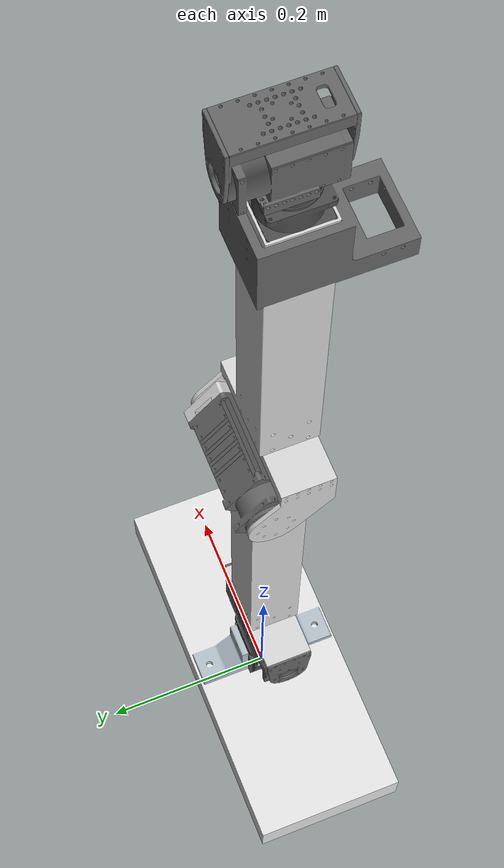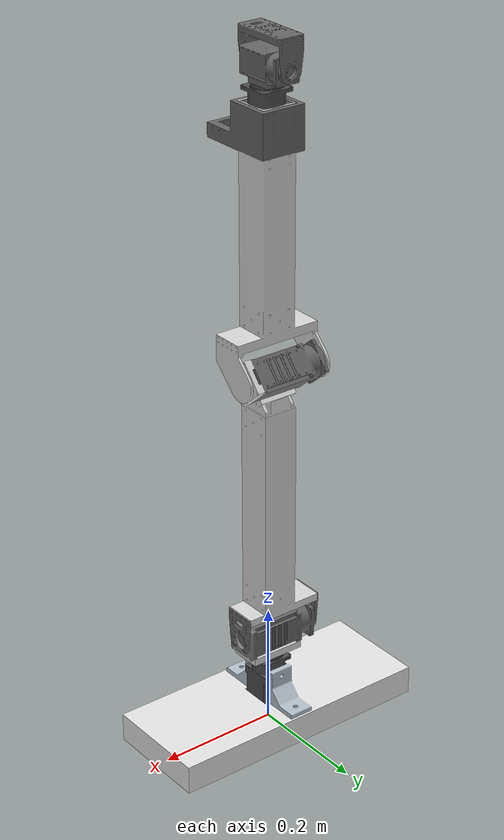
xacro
<?xml version='1.0' encoding='utf-8'?>
<robot xmlns:xacro="http://www.ros.org/wiki/xacro" name="timon">

    <link name="base_to_manipulator">
      <visual>
        <origin rpy="0 0 0" xyz="0 0 0"/>
        <geometry>
          <mesh filename="package://warthog_arm/meshes/base.dae"/>
        </geometry>
      </visual>
      <collision>
        <origin rpy="0 0 0" xyz="0 0 0"/>
        <geometry>
          <mesh filename="package://warthog_arm/meshes/base.dae"/>
        </geometry>
      </collision>
      <inertial>
        <origin rpy="0 0 0" xyz="0 0 0"/>
        <mass value="1.8"/>
        <inertia ixx="8.72078676" ixy="-9.55785583e-7" ixz="0" iyx="-9.55785583e-7" iyy="4.66430350" iyz="0" izx="0" izy="-0" izz="5.35109282"/>
      </inertial>
    </link>

    <link name="manip_link0">
      <visual>
        <origin xyz="0 0 0" rpy="0 0 0" />
        <geometry>
          <mesh filename="package://warthog_arm/meshes/id_1.dae"/>
        </geometry>
      </visual>
      <collision>
        <origin xyz="0 0 0" rpy="0 0 0" />
        <geometry>
          <mesh filename="package://warthog_arm/meshes/id_1.dae"/>
        </geometry>
      </collision>
      <inertial>
        <origin xyz="0 0 0" rpy="0 0 0 "/>
        <mass value="3.72486532"/>
        <inertia ixx="0.011"  ixy="-9.466e-9"  ixz="-0.00000563" iyy="0.04868026" iyz="0" izz="0.05388592" />
      </inertial>
    </link>
     <joint name ="base_to_link0" type="fixed">
        <origin rpy="0 0 3.14" xyz="0 0 0"/>
        <parent link="base_to_manipulator"/>
        <child link = "manip_link0"/>
      </joint>

    <link name="manip_link1">
      <visual>
        <origin xyz="0 0 0" rpy="0 0 0" />
        <geometry>
          <mesh filename="package://warthog_arm/meshes/id_2.dae"/>
        </geometry>
      </visual>
      <collision>
        <origin xyz="0 0 0" rpy="0 0 0" />
        <geometry>
          <mesh filename="package://warthog_arm/meshes/id_2.dae"/>
        </geometry>
      </collision>
      <inertial>
        <origin xyz="0 0 0" rpy="0 0 0 "/>
        <mass value="1.00643107"/>
        <inertia ixx="0.00055282"  ixy="0"  ixz="-0.00005159" iyy="0.00152712" iyz="0.00000e+0" izz="0.00141817" />
      </inertial>
    </link>
    <joint name="id_1" type="revolute">
      <origin rpy="0 0 0" xyz="0 0 0.12715351"/>
      <parent link="manip_link0"/>
      <child link="manip_link1"/>
      <axis xyz="0 0 1" rpy="0 0 0"/>
      <limit effort="1000.0" lower="-0.8" upper="0.8" velocity="0.5"/>
    </joint>

    <link name="manip_link2">
      <visual>
        <origin xyz="0 0 0" rpy="0 0 0" />
        <geometry>
          <mesh filename="package://warthog_arm/meshes/id_3.dae"/>
        </geometry>
      </visual>
      <collision>
        <origin xyz="0 0 0" rpy="0 0 0" />
        <geometry>
          <mesh filename="package://warthog_arm/meshes/id_3.dae"/>
        </geometry>
      </collision>
      <inertial>
        <origin xyz="0 0 0" rpy="0 0 0 "/>
        <mass value="1.96131158"/>
        <inertia ixx="0.0593682"  ixy="0.00019981"  ixz="0.0024082" iyy="0.06052018" iyz="-0.00320203" izz="0.00314458" />
      </inertial>
    </link>
    <joint name="id_2" type="revolute">
      <origin rpy="0 0 0" xyz="0.01099894 0 0.03900000"/>
      <parent link="manip_link1"/>
      <child link="manip_link2"/>
      <axis xyz="1 0 0" rpy="0 0 0"/>
      <limit effort="1000.0" lower="-1.5708" upper="1.5708" velocity="0.5"/>
    </joint>

    <link name="manip_link3">
      <visual>
        <origin xyz="0 0 0" rpy="0 0 0" />
        <geometry>
          <mesh filename="package://warthog_arm/meshes/id_4.dae"/>
        </geometry>
      </visual>
      <collision>
        <origin xyz="0 0 0" rpy="0 0 0" />
        <geometry>
          <mesh filename="package://warthog_arm/meshes/id_4.dae"/>
        </geometry>
      </collision>
      <inertial>
        <origin xyz="0 0 0" rpy="0 0 0"/>
        <mass value="1.96131158"/>
        <inertia ixx="0.0593682"  ixy="0.00019981"  ixz="0.0024082" iyy="0.06052018" iyz="-0.00320203" izz="0.00314458" />
      </inertial>
    </link>
    <joint name="id_3" type="revolute">
      <origin rpy="0 0.0 0.0" xyz="-0.00872107 -0.02468844 0.46468251"/>
      <parent link="manip_link2"/>
      <child link="manip_link3"/>
      <axis xyz="1 0 0" rpy="0 0 0"/>
      <limit effort="1000.0" lower="-0.74" upper="3.03" velocity="0.5"/>
    </joint>

    <link name="manip_link4">
      <visual>
        <origin xyz="0 0 0" rpy="0 0 0" />
        <geometry>
          <mesh filename="package://warthog_arm/meshes/id_5.dae"/>
        </geometry>
      </visual>
      <collision>
        <origin xyz="0 0 0" rpy="0 0 0" />
        <geometry>
          <mesh filename="package://warthog_arm/meshes/id_5.dae"/>
        </geometry>
      </collision>
      <inertial>
        <origin xyz="0 0 0" rpy="0 0 0 "/>
        <mass value="0.37561629"/>
        <inertia ixx="0.00025385"  ixy="0"  ixz="0" iyy="0.00011288" iyz="0.00000228" izz="0.00025011" />
      </inertial>
    </link>
    <joint name="id_4" type="revolute">
      <safety_controller k_position="100.0" k_velocity="40.0" soft_lower_limit="-2.974" soft_upper_limit="2.974"/>
      <origin rpy="0 0 0" xyz="0.00025000 0.02278775 0.44101451"/>
      <parent link="manip_link3"/>
      <child link="manip_link4"/>
      <axis xyz="0 0 -1"/>
      <limit effort="1000.0" lower="-2.974" upper="2.974" velocity="0.5"/>
    </joint>

    <link name="manip_link5">
      <visual>
        <origin xyz="0.0 0.0 0.0" rpy="0 0 0" />
        <geometry>
          <mesh filename="package://warthog_arm/meshes/id_6.dae"/>
        </geometry>
      </visual>
      <collision>
        <origin xyz="0.0 0.0 0.0" rpy="0 0 0" />
        <geometry>
          <mesh filename="package://warthog_arm/meshes/id_6.dae"/>
        </geometry>
      </collision>
      <inertial>
        <origin xyz="0.0 0.0 0.0" rpy="0 0 0 "/>
        <mass value="0.08694786"/>
        <inertia ixx="0.00012963"  ixy="0"  ixz="0" iyy="0.00012601" iyz="-0.00000408" izz="0.00003715" />
      </inertial>
    </link>
    <joint name="id_5" type="revolute">
      <origin rpy="0 0 0" xyz="0 0 0.02699559"/>
      <parent link="manip_link4"/>
      <child link="manip_link5"/>
      <axis xyz="0 1 0" rpy="0 0 0"/>
      <limit effort="1000.0" lower="-1.5708" upper="1.5708" velocity="0.5"/>
    </joint>

    <transmission name="trans_timon_joint1">
        <type>transmission_interface/SimpleTransmission</type>
        <joint name="id_1">
            <hardwareInterface>hardware_interface/PositionJointInterface</hardwareInterface>
        </joint>
        <actuator name="timon_joint1_motor">
            <hardwareInterface>hardware_interface/PositionJointInterface</hardwareInterface>
            <mechanicalReduction>1</mechanicalReduction>
        </actuator>
    </transmission>
    <transmission name="trans_timon_joint2">
        <type>transmission_interface/SimpleTransmission</type>
        <joint name="id_2">
            <hardwareInterface>hardware_interface/PositionJointInterface</hardwareInterface>
        </joint>
        <actuator name="timon_joint2_motor">
            <hardwareInterface>hardware_interface/PositionJointInterface</hardwareInterface>
            <mechanicalReduction>1</mechanicalReduction>
        </actuator>
    </transmission>
    <transmission name="trans_timon_joint3">
        <type>transmission_interface/SimpleTransmission</type>
        <joint name="id_3">
            <hardwareInterface>hardware_interface/PositionJointInterface</hardwareInterface>
        </joint>
        <actuator name="timon_joint3_motor">
            <hardwareInterface>hardware_interface/PositionJointInterface</hardwareInterface>
            <mechanicalReduction>1</mechanicalReduction>
        </actuator>
    </transmission>
    <transmission name="trans_timon_joint4">
        <type>transmission_interface/SimpleTransmission</type>
        <joint name="id_4">
            <hardwareInterface>hardware_interface/PositionJointInterface</hardwareInterface>
        </joint>
        <actuator name="timon_joint4_motor">
            <hardwareInterface>hardware_interface/PositionJointInterface</hardwareInterface>
            <mechanicalReduction>1</mechanicalReduction>
        </actuator>
    </transmission>
    <transmission name="trans_timon_joint5">
        <type>transmission_interface/SimpleTransmission</type>
        <joint name="id_5">
            <hardwareInterface>hardware_interface/PositionJointInterface</hardwareInterface>
        </joint>
        <actuator name="timon_joint5_motor">
            <hardwareInterface>hardware_interface/PositionJointInterface</hardwareInterface>
            <mechanicalReduction>1</mechanicalReduction>
        </actuator>
    </transmission>

</robot>
